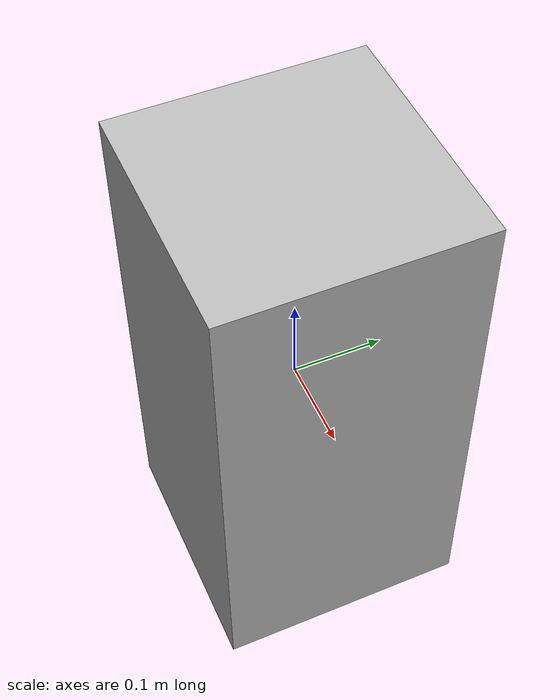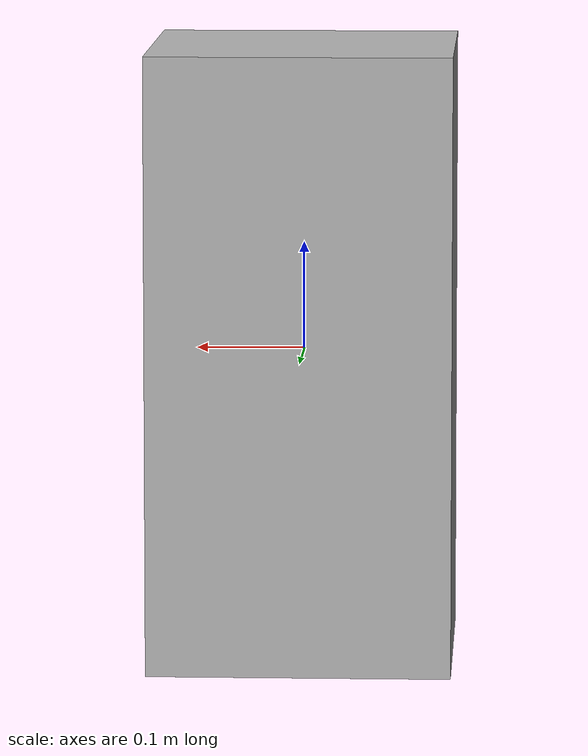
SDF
<?xml version="1.0" ?>
<sdf version="1.5">
  <model name="box_simple">
    <static>true</static>
    <link name="link">
      <collision name="collision">
        <geometry>
          <box>
              <size>0.28 0.28 0.57</size>
          </box>
        </geometry>
      </collision>
      <visual name="visual">
        <cast_shadows>false</cast_shadows>
        <geometry>
          <box>
              <size>0.28 0.28 0.57</size>
          </box>
        </geometry>
      </visual>
    </link>
  </model>
</sdf>
